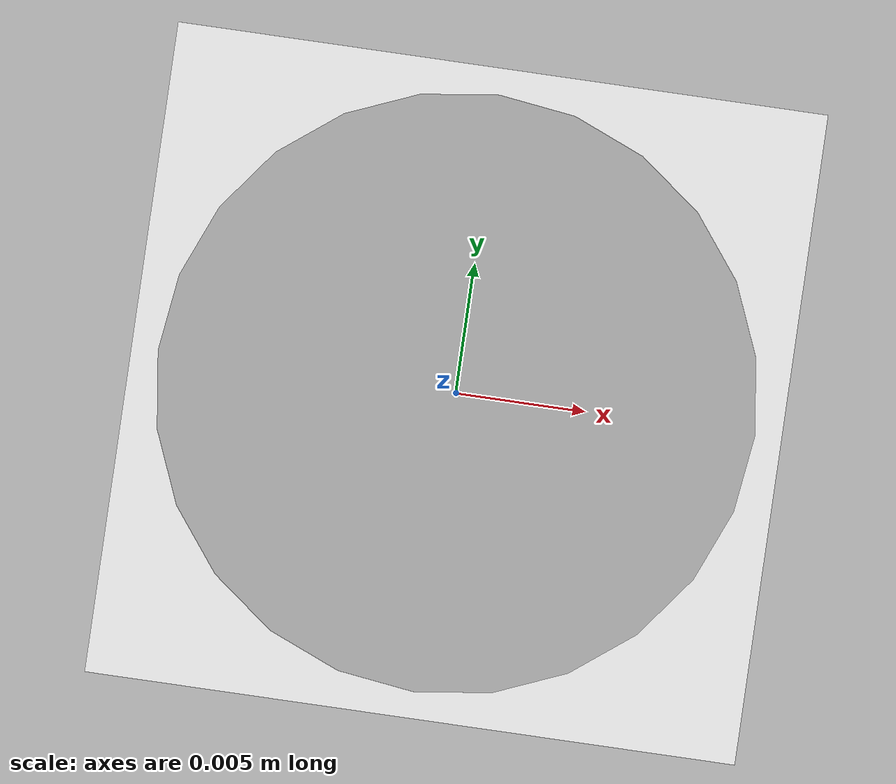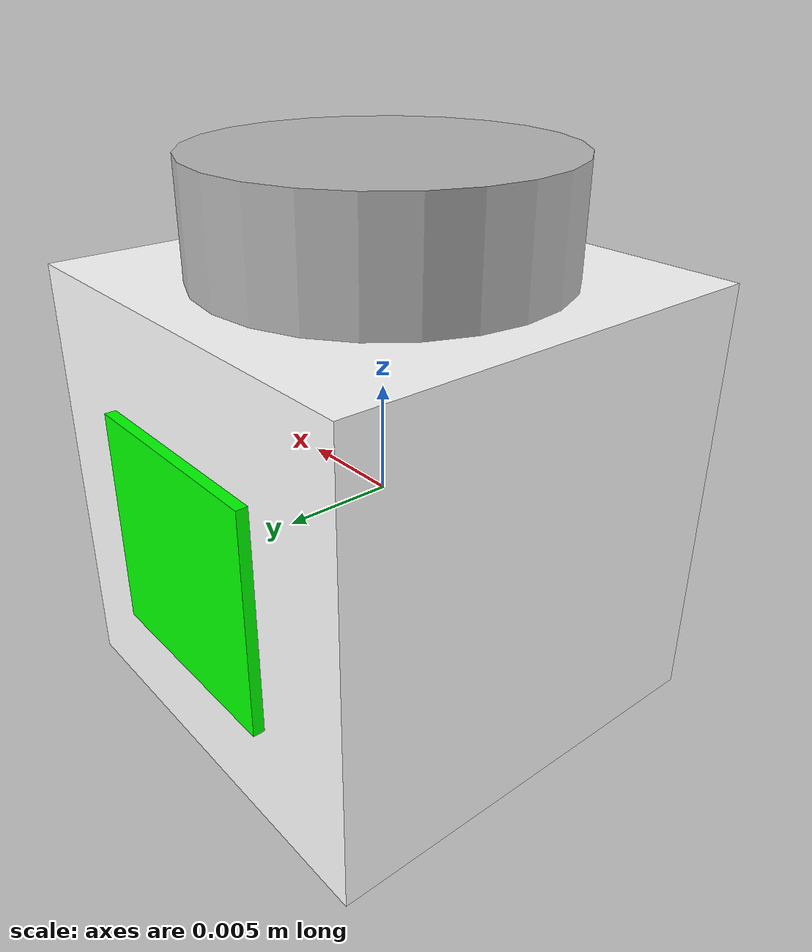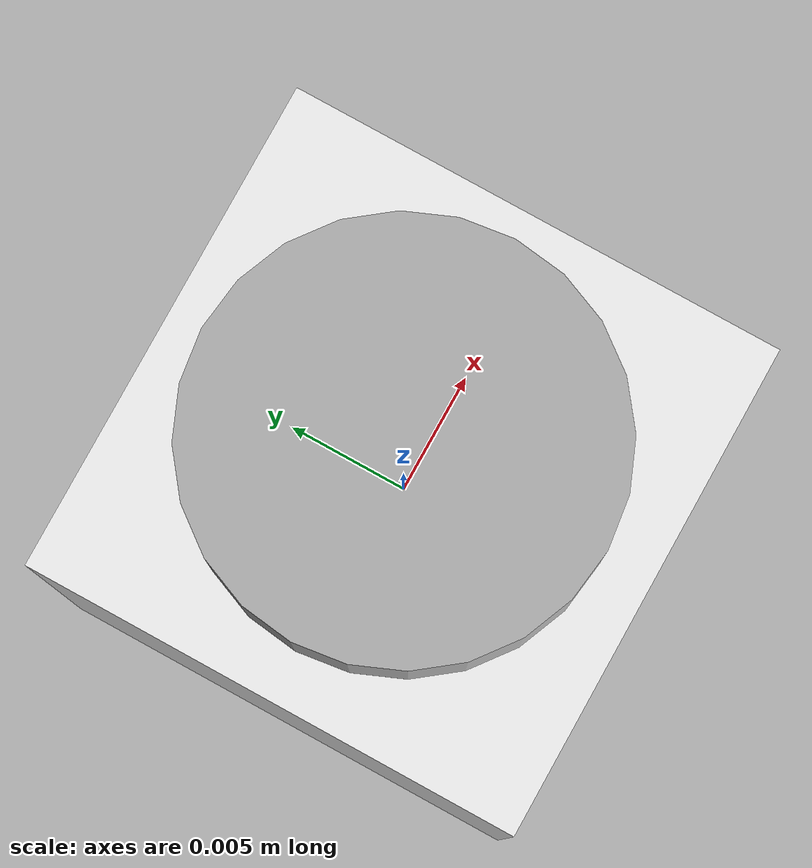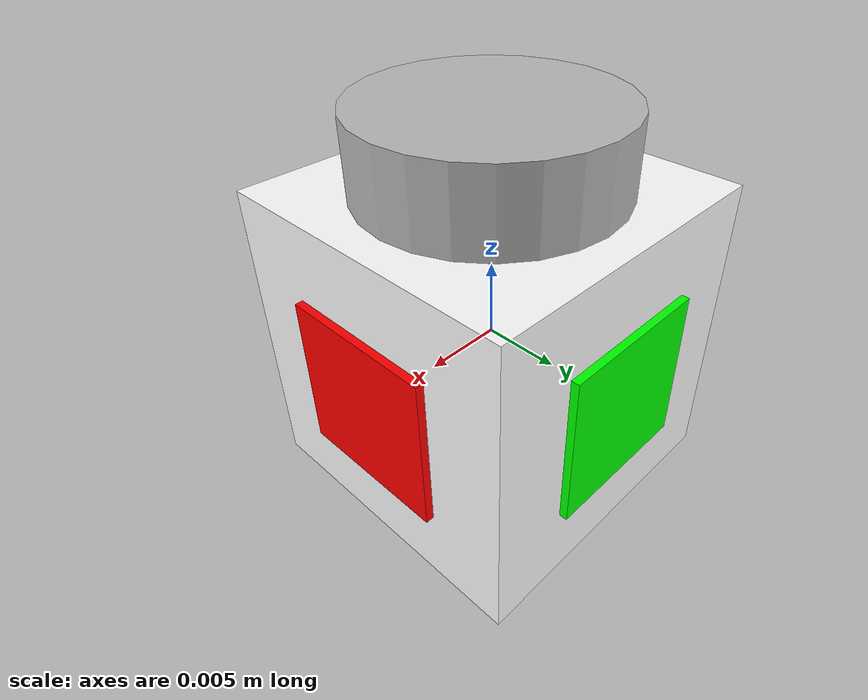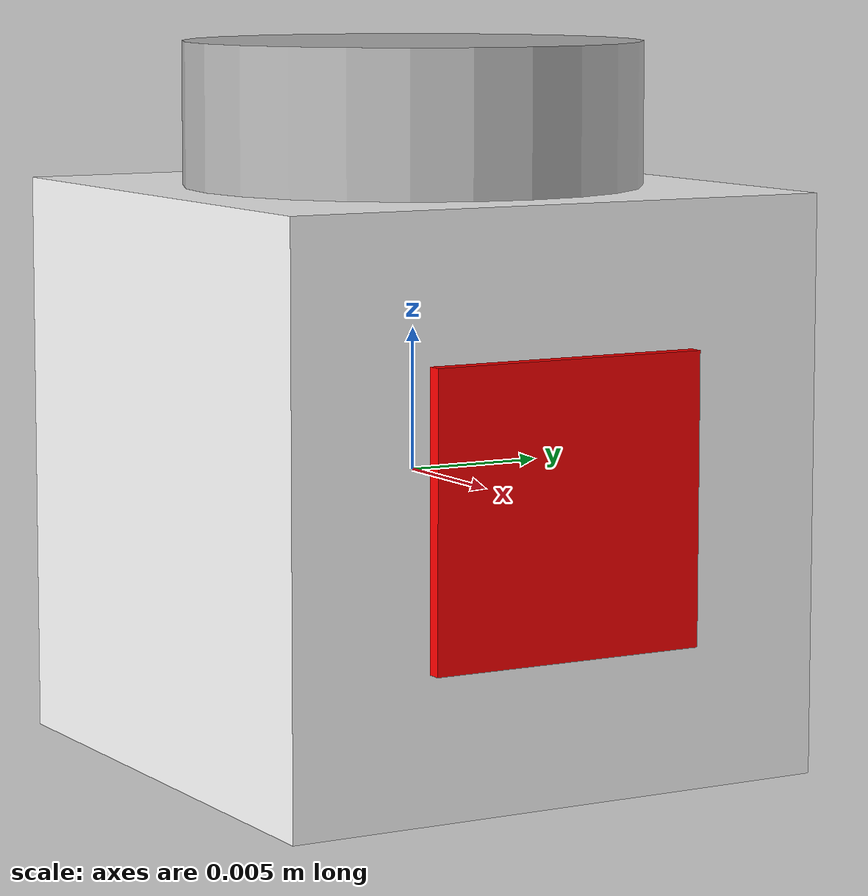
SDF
<?xml version="1.0" ?>
<sdf version="1.5">
<model name="cam_d455">
    <link name="base">
        <inertial>
            <mass>0.1</mass>
            <inertia>
                <ixx>1e-5</ixx><ixy>0</ixy><ixz>0</ixz>
                <iyy>1e-5</iyy><iyz>0</iyz>
                <izz>1e-5</izz>
            </inertia>
        </inertial>

        <collision name="collision">
            <pose>0 0 0.04 0 0 0</pose>
            <geometry>
                <box><size>0.02 0.02 0.02</size></box>
            </geometry>
        </collision>

        <!-- Rotate in order to have the camera looking toward +Z when aligned with worldframe -->
        <pose>0 0 0 3.1415 0 0</pose>

        <visual name="camera">
            <pose>0 0 0 0 0 0</pose>
            <geometry>
                <box><size>0.02 0.02 0.02</size></box>
            </geometry>
            <material>
                <ambient>0.1 0.1 0.1 1</ambient>
                <diffuse>1.0 1.0 1.0 1</diffuse>
            </material>
        </visual>
        <visual name="xface">
            <pose>0.01 0 0 0 0 0</pose>
            <geometry>
                <box><size>0.001 0.01 0.01</size></box>
            </geometry>
            <material>
                <ambient>1 0 0 1</ambient>
                <diffuse>1 0 0 1</diffuse>
            </material>
        </visual>
        <visual name="yface">
            <pose>0 -0.01 0 0 0 0</pose>
            <geometry>
                <box><size>0.01 0.001 0.01</size></box>
            </geometry>
            <material>
                <ambient>0 1 0 1</ambient>
                <diffuse>0 1 0 1</diffuse>
            </material>
        </visual>
        <visual name="lens">
            <pose>0 0 -0.01  0 0 0</pose>
            <geometry>
                <cylinder><radius>0.008</radius><length>0.01</length></cylinder>
            </geometry>
        </visual>

        <sensor name="rgb_cam" type="camera">
            <pose>0 0 -0.015 1.5708 1.5708 3.1415</pose>
            <topic>/camera/color/image</topic>
            <always_on>1</always_on>
            <update_rate>15</update_rate>
            <camera name="rgb_cam">
                <horizontal_fov>1.52</horizontal_fov>
                <image>
                    <width>480</width>
                    <height>270</height>
                    <format>R8G8B8</format>
                </image>
                <clip>
                    <near>0.02</near>
                    <far>20</far>
                </clip>
                <noise>
                    <type>gaussian</type>
                    <mean>0</mean>
                    <stddev>0.007</stddev>
                </noise>
            </camera>
        </sensor>

        <sensor name="depth_cam" type="depth_camera">
            <pose>0 0 -0.015 1.5708 1.5708 3.1415</pose>
            <topic>/camera/depth/image</topic>
            <always_on>1</always_on>
            <update_rate>30</update_rate>
            <camera name="depth_cam">
                <horizontal_fov>1.52</horizontal_fov>
                <image>
                    <width>480</width>
                    <height>270</height>
                    <format>R_FLOAT32</format>
                </image>
                <clip>
                    <near>0.02</near>
                    <far>10</far>
                </clip>
                <noise>
                    <type>gaussian</type>
                    <mean>0</mean>
                    <stddev>0.007</stddev>
                </noise>
            </camera>
        </sensor>
    </link>
</model>
</sdf>
